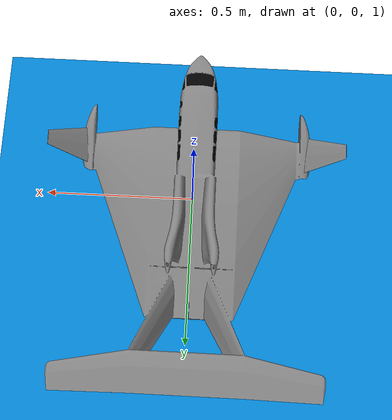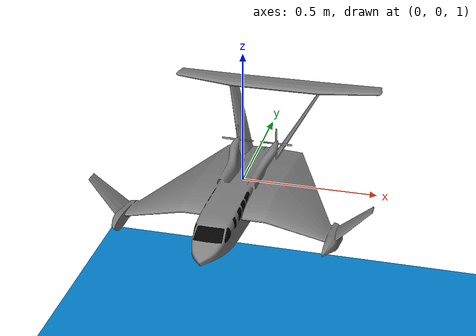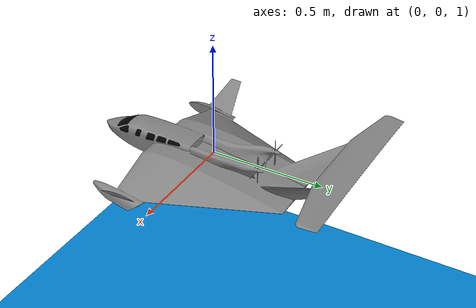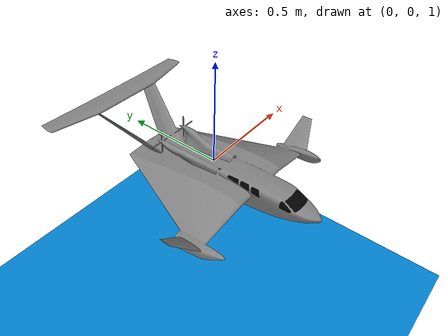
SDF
<?xml version="1.0" ?>
<sdf version="1.6">
  <world name="default">
    <gravity>0 0 0</gravity> <!-- Veo que anulaste la gravedad en Gazebo porque Simulink ya la calcula, ¡bien hecho! -->

    <plugin name="gazebo_ros_state" filename="libgazebo_ros_state.so">
      <ros>
        <namespace>/gazebo</namespace>
      </ros>
      <update_rate>100.0</update_rate>
      <publish_model_states>false</publish_model_states>
      <publish_link_states>false</publish_link_states>
    </plugin>

    <include>
      <uri>model://sun</uri>
    </include>

    <!-- Océano con material mejorado y plano móvil -->
    <model name="ocean">
      <static>true</static>
      <pose>0 0 0 0 0 0</pose>
      <link name="ocean_link">
        <visual name="ocean_visual">
          <geometry>
            <plane>
              <normal>0 0 1</normal>
              <size>20000 20000</size>
            </plane>
          </geometry>
          <material>
            <script>
              <uri>file://media/materials/scripts/gazebo.material</uri>
              <name>Gazebo/Water</name>
            </script>
            <ambient>0.0 0.35 0.60 0.85</ambient>
            <diffuse>0.0 0.50 0.80 0.85</diffuse>
            <specular>0.4 0.4 0.4 1.0</specular>
          </material>
          <plugin name="wave_visual" filename="libgazebo_ros_wave_visual.so">
            <ros>
              <namespace>/ocean</namespace>
            </ros>
            <topic>wave_height</topic>
            <update_rate>20.0</update_rate>
          </plugin>
        </visual>
      </link>
    </model>

    <!-- Tu modelo cargado desde la carpeta local -->
    <include>
      <name>ekranoplano</name>
      <uri>model://mi_ekranoplano</uri>
      <!-- IMPORTANTE: Hacemos match con el z_NED inicial de Simulink -->
      <pose>0 0 1 0 0 0</pose>
    </include>
   <gui fullscreen='0'>
      <camera name='user_camera'>
        <pose>5 -5 2 0 0.2 2.3</pose>
        <view_controller>orbit</view_controller>
      </camera>

      <plugin name='keyboard' filename='libKeyboardGUIPlugin.so'/>

      <grid>
        <origin>0 0 0</origin>
        <size>20000 20000</size>
        <cell_size>100 100</cell_size>
        <cell_count>200</cell_count>
      </grid>
    </gui>

  </world>
</sdf>

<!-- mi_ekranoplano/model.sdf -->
<sdf version="1.6">
  <model name="mi_ekranoplano">
    <static>true</static>
    <link name="base_link">
      <visual name="visual">
        <geometry>
          <mesh>
            <uri>model://mi_ekranoplano/meshes/AIRFISH-8_EKRANOPLANO.dae</uri>
            <scale>1 1 1</scale>
          </mesh>
        </geometry>
      </visual>
    </link>
  </model>
</sdf>
